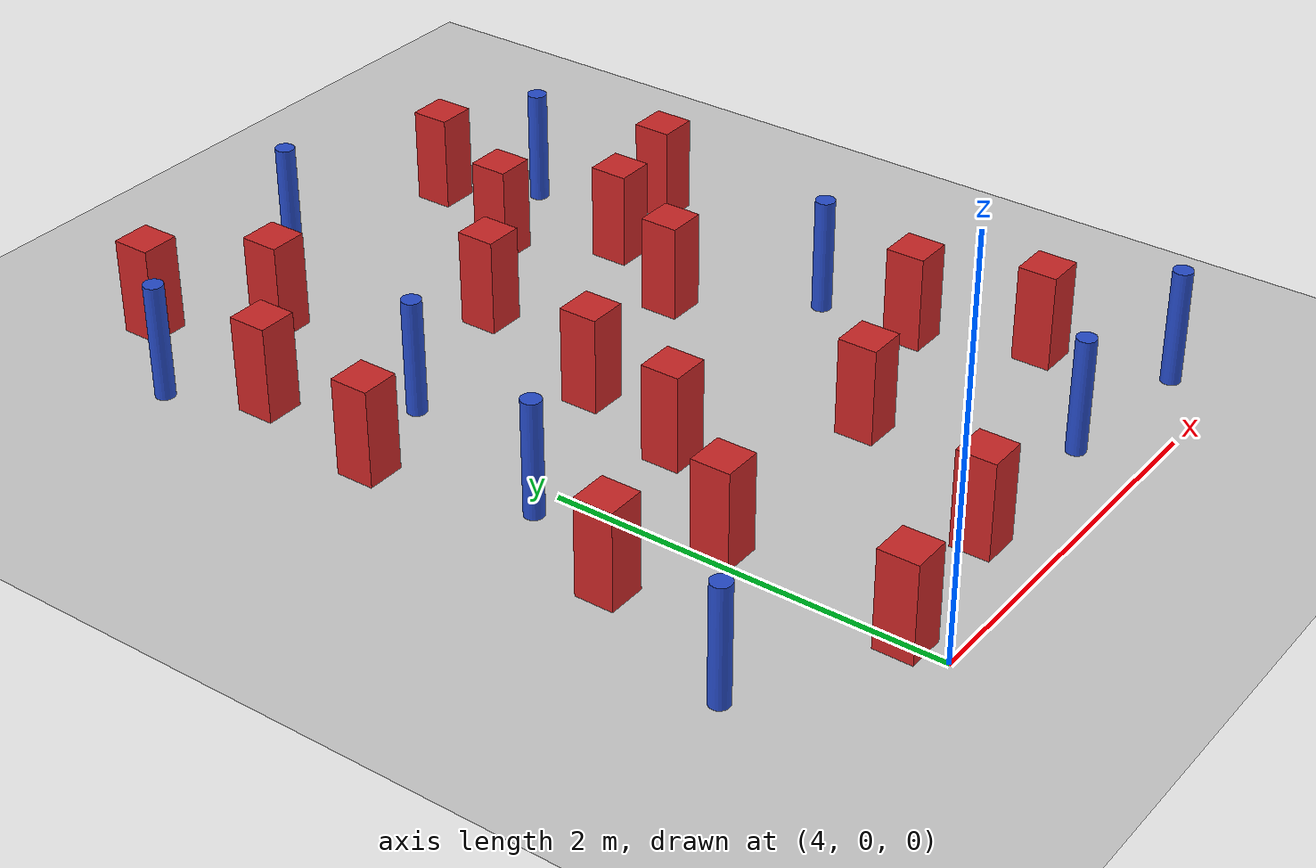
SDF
<sdf version="1.6">
 <world name="default">
  <model name="ground_plane">
   <static>1</static>
   <link name="link">
    <collision name="collision">
     <geometry><plane><normal>0 0 1</normal><size>100 100</size></plane></geometry>
     <surface><friction><ode><mu>100</mu><mu2>50</mu2></ode></friction></surface>
    </collision>
    <visual name="visual">
     <cast_shadows>0</cast_shadows>
     <geometry><plane><normal>0 0 1</normal><size>100 100</size></plane></geometry>
     <material>
      <ambient>1.0 1.0 1.0 1.0</ambient>
      <diffuse>0.8 0.8 0.8 1.0</diffuse>
      <specular>0.01 0.01 0.01 1.000000</specular>
     </material>
    </visual>
   </link>
  </model>
  <model name="square_post_obstacle31">
   <static>true</static>
   <pose>6.0948693656 1.46134708452 8.22691968438e-08 7.2212513382e-06 -7.54495500217e-07 2.29674213826e-05</pose>
   <link name="link">
    <pose>0 0 0.25 0 -0 0</pose>
    <inertial>
     <mass>100</mass>
     <inertia>
      <ixx>0.166667</ixx>
      <ixy>0</ixy>
      <ixz>0</ixz>
      <iyy>0.166667</iyy>
      <iyz>0</iyz>
      <izz>0.166667</izz>
     </inertia>
    </inertial>
    <collision name="collision"><geometry><box><size>.2 .2 .5</size></box></geometry></collision>
    <visual name="visual">
     <geometry><box><size>.2 .2 .5</size></box></geometry>
     <material>
      <script><name>Gazebo/Red</name><uri>file://media/materials/scripts/gazebo.material</uri></script>
     </material>
    </visual>
   </link>
  </model>
  <model name="square_post_obstacle33">
   <static>true</static>
   <pose>4.80002112037 0.321490979364 8.22691968438e-08 7.2212513382e-06 -7.54495500217e-07 2.29674213826e-05</pose>
   <link name="link">
    <pose>0 0 0.25 0 -0 0</pose>
    <inertial>
     <mass>100</mass>
     <inertia>
      <ixx>0.166667</ixx>
      <ixy>0</ixy>
      <ixz>0</ixz>
      <iyy>0.166667</iyy>
      <iyz>0</iyz>
      <izz>0.166667</izz>
     </inertia>
    </inertial>
    <collision name="collision"><geometry><box><size>.2 .2 .5</size></box></geometry></collision>
    <visual name="visual">
     <geometry><box><size>.2 .2 .5</size></box></geometry>
     <material>
      <script><name>Gazebo/Red</name><uri>file://media/materials/scripts/gazebo.material</uri></script>
     </material>
    </visual>
   </link>
  </model>
  <model name="pole_obstacle60">
   <static>true</static>
   <pose>4.94756713771 4.46294073131 2.88873142074e-08 -9.90536690842e-09 4.60219948965e-07 -1.20965994976e-07</pose>
   <link name="link">
    <pose>0 0 0.3 0 -0 0</pose>
    <inertial>
     <mass>1</mass>
     <inertia><ixx>0.145833</ixx><ixy>0</ixy><ixz>0</ixz><iyy>0.145833</iyy><iyz>0</iyz><izz>0.125</izz></inertia>
    </inertial>
    <collision name="collision">
     <geometry><cylinder><radius>0.05</radius><length>.6</length></cylinder></geometry>
    </collision>
    <visual name="visual">
     <geometry><cylinder><radius>0.05</radius><length>.6</length></cylinder></geometry>
     <material>
      <script><name>Gazebo/Blue</name><uri>file://media/materials/scripts/gazebo.material</uri></script>
     </material>
    </visual>
   </link>
  </model>
  <model name="square_post_obstacle64">
   <static>true</static>
   <pose>5.61569513435 3.62039335274 8.22691968438e-08 7.2212513382e-06 -7.54495500217e-07 2.29674213826e-05</pose>
   <link name="link">
    <pose>0 0 0.25 0 -0 0</pose>
    <inertial>
     <mass>100</mass>
     <inertia>
      <ixx>0.166667</ixx>
      <ixy>0</ixy>
      <ixz>0</ixz>
      <iyy>0.166667</iyy>
      <iyz>0</iyz>
      <izz>0.166667</izz>
     </inertia>
    </inertial>
    <collision name="collision"><geometry><box><size>.2 .2 .5</size></box></geometry></collision>
    <visual name="visual">
     <geometry><box><size>.2 .2 .5</size></box></geometry>
     <material>
      <script><name>Gazebo/Red</name><uri>file://media/materials/scripts/gazebo.material</uri></script>
     </material>
    </visual>
   </link>
  </model>
  <model name="square_post_obstacle70">
   <static>true</static>
   <pose>5.65078048055 2.58453810681 8.22691968438e-08 7.2212513382e-06 -7.54495500217e-07 2.29674213826e-05</pose>
   <link name="link">
    <pose>0 0 0.25 0 -0 0</pose>
    <inertial>
     <mass>100</mass>
     <inertia>
      <ixx>0.166667</ixx>
      <ixy>0</ixy>
      <ixz>0</ixz>
      <iyy>0.166667</iyy>
      <iyz>0</iyz>
      <izz>0.166667</izz>
     </inertia>
    </inertial>
    <collision name="collision"><geometry><box><size>.2 .2 .5</size></box></geometry></collision>
    <visual name="visual">
     <geometry><box><size>.2 .2 .5</size></box></geometry>
     <material>
      <script><name>Gazebo/Red</name><uri>file://media/materials/scripts/gazebo.material</uri></script>
     </material>
    </visual>
   </link>
  </model>
  <model name="square_post_obstacle71">
   <static>true</static>
   <pose>4.56409459324 1.78852129041 8.22691968438e-08 7.2212513382e-06 -7.54495500217e-07 2.29674213826e-05</pose>
   <link name="link">
    <pose>0 0 0.25 0 -0 0</pose>
    <inertial>
     <mass>100</mass>
     <inertia>
      <ixx>0.166667</ixx>
      <ixy>0</ixy>
      <ixz>0</ixz>
      <iyy>0.166667</iyy>
      <iyz>0</iyz>
      <izz>0.166667</izz>
     </inertia>
    </inertial>
    <collision name="collision"><geometry><box><size>.2 .2 .5</size></box></geometry></collision>
    <visual name="visual">
     <geometry><box><size>.2 .2 .5</size></box></geometry>
     <material>
      <script><name>Gazebo/Red</name><uri>file://media/materials/scripts/gazebo.material</uri></script>
     </material>
    </visual>
   </link>
  </model>
  <model name="pole_obstacle71">
   <static>true</static>
   <pose>6.4777378661 0.260255952438 2.88873142074e-08 -9.90536689883e-09 4.60219948988e-07 -1.20965994961e-07</pose>
   <link name="link">
    <pose>0 0 0.3 0 -0 0</pose>
    <inertial>
     <mass>1</mass>
     <inertia><ixx>0.145833</ixx><ixy>0</ixy><ixz>0</ixz><iyy>0.145833</iyy><iyz>0</iyz><izz>0.125</izz></inertia>
    </inertial>
    <collision name="collision">
     <geometry><cylinder><radius>0.05</radius><length>.6</length></cylinder></geometry>
    </collision>
    <visual name="visual">
     <geometry><cylinder><radius>0.05</radius><length>.6</length></cylinder></geometry>
     <material>
      <script><name>Gazebo/Blue</name><uri>file://media/materials/scripts/gazebo.material</uri></script>
     </material>
    </visual>
   </link>
  </model>
  <model name="square_post_obstacle80">
   <static>true</static>
   <pose>4.08681037357 1.18147574948 8.22691968438e-08 7.2212513382e-06 -7.54495500217e-07 2.29674213826e-05</pose>
   <link name="link">
    <pose>0 0 0.25 0 -0 0</pose>
    <inertial>
     <mass>100</mass>
     <inertia>
      <ixx>0.166667</ixx>
      <ixy>0</ixy>
      <ixz>0</ixz>
      <iyy>0.166667</iyy>
      <iyz>0</iyz>
      <izz>0.166667</izz>
     </inertia>
    </inertial>
    <collision name="collision"><geometry><box><size>.2 .2 .5</size></box></geometry></collision>
    <visual name="visual">
     <geometry><box><size>.2 .2 .5</size></box></geometry>
     <material>
      <script><name>Gazebo/Red</name><uri>file://media/materials/scripts/gazebo.material</uri></script>
     </material>
    </visual>
   </link>
  </model>
  <model name="square_post_obstacle81">
   <static>true</static>
   <pose>3.67015366936 2.81922112893 8.22691968438e-08 7.2212513382e-06 -7.54495500217e-07 2.29674213826e-05</pose>
   <link name="link">
    <pose>0 0 0.25 0 -0 0</pose>
    <inertial>
     <mass>100</mass>
     <inertia>
      <ixx>0.166667</ixx>
      <ixy>0</ixy>
      <ixz>0</ixz>
      <iyy>0.166667</iyy>
      <iyz>0</iyz>
      <izz>0.166667</izz>
     </inertia>
    </inertial>
    <collision name="collision"><geometry><box><size>.2 .2 .5</size></box></geometry></collision>
    <visual name="visual">
     <geometry><box><size>.2 .2 .5</size></box></geometry>
     <material>
      <script><name>Gazebo/Red</name><uri>file://media/materials/scripts/gazebo.material</uri></script>
     </material>
    </visual>
   </link>
  </model>
  <model name="pole_obstacle89">
   <static>true</static>
   <pose>3.83901957101 2.01076483617 2.88873142074e-08 -9.90536689662e-09 4.60219948993e-07 -1.20965994957e-07</pose>
   <link name="link">
    <pose>0 0 0.3 0 -0 0</pose>
    <inertial>
     <mass>1</mass>
     <inertia><ixx>0.145833</ixx><ixy>0</ixy><ixz>0</ixz><iyy>0.145833</iyy><iyz>0</iyz><izz>0.125</izz></inertia>
    </inertial>
    <collision name="collision">
     <geometry><cylinder><radius>0.05</radius><length>.6</length></cylinder></geometry>
    </collision>
    <visual name="visual">
     <geometry><cylinder><radius>0.05</radius><length>.6</length></cylinder></geometry>
     <material>
      <script><name>Gazebo/Blue</name><uri>file://media/materials/scripts/gazebo.material</uri></script>
     </material>
    </visual>
   </link>
  </model>
  <model name="pole_obstacle93">
   <static>true</static>
   <pose>4.17531212841 2.96968888223 2.88873142074e-08 -9.90536690245e-09 4.6021994898e-07 -1.20965994966e-07</pose>
   <link name="link">
    <pose>0 0 0.3 0 -0 0</pose>
    <inertial>
     <mass>1</mass>
     <inertia><ixx>0.145833</ixx><ixy>0</ixy><ixz>0</ixz><iyy>0.145833</iyy><iyz>0</iyz><izz>0.125</izz></inertia>
    </inertial>
    <collision name="collision">
     <geometry><cylinder><radius>0.05</radius><length>.6</length></cylinder></geometry>
    </collision>
    <visual name="visual">
     <geometry><cylinder><radius>0.05</radius><length>.6</length></cylinder></geometry>
     <material>
      <script><name>Gazebo/Blue</name><uri>file://media/materials/scripts/gazebo.material</uri></script>
     </material>
    </visual>
   </link>
  </model>
  <model name="square_post_obstacle84">
   <static>true</static>
   <pose>4.37230281539 4.01572510302 8.22691968438e-08 7.22125133819e-06 -7.54495500217e-07 2.29674213826e-05</pose>
   <link name="link">
    <pose>0 0 0.25 0 -0 0</pose>
    <inertial>
     <mass>100</mass>
     <inertia>
      <ixx>0.166667</ixx>
      <ixy>0</ixy>
      <ixz>0</ixz>
      <iyy>0.166667</iyy>
      <iyz>0</iyz>
      <izz>0.166667</izz>
     </inertia>
    </inertial>
    <collision name="collision"><geometry><box><size>.2 .2 .5</size></box></geometry></collision>
    <visual name="visual">
     <geometry><box><size>.2 .2 .5</size></box></geometry>
     <material>
      <script><name>Gazebo/Red</name><uri>file://media/materials/scripts/gazebo.material</uri></script>
     </material>
    </visual>
   </link>
  </model>
  <model name="square_post_obstacle90">
   <static>true</static>
   <pose>4.00096132078 0.212900404265 8.22691968438e-08 7.2212513382e-06 -7.54495500217e-07 2.29674213826e-05</pose>
   <link name="link">
    <pose>0 0 0.25 0 -0 0</pose>
    <inertial>
     <mass>100</mass>
     <inertia>
      <ixx>0.166667</ixx>
      <ixy>0</ixy>
      <ixz>0</ixz>
      <iyy>0.166667</iyy>
      <iyz>0</iyz>
      <izz>0.166667</izz>
     </inertia>
    </inertial>
    <collision name="collision"><geometry><box><size>.2 .2 .5</size></box></geometry></collision>
    <visual name="visual">
     <geometry><box><size>.2 .2 .5</size></box></geometry>
     <material>
      <script><name>Gazebo/Red</name><uri>file://media/materials/scripts/gazebo.material</uri></script>
     </material>
    </visual>
   </link>
  </model>
  <model name="pole_obstacle103">
   <static>true</static>
   <pose>6.17644602194 3.82168749053 2.88873142074e-08 -9.90536690245e-09 4.6021994898e-07 -1.20965994966e-07</pose>
   <link name="link">
    <pose>0 0 0.3 0 -0 0</pose>
    <inertial>
     <mass>1</mass>
     <inertia><ixx>0.145833</ixx><ixy>0</ixy><ixz>0</ixz><iyy>0.145833</iyy><iyz>0</iyz><izz>0.125</izz></inertia>
    </inertial>
    <collision name="collision">
     <geometry><cylinder><radius>0.05</radius><length>.6</length></cylinder></geometry>
    </collision>
    <visual name="visual">
     <geometry><cylinder><radius>0.05</radius><length>.6</length></cylinder></geometry>
     <material>
      <script><name>Gazebo/Blue</name><uri>file://media/materials/scripts/gazebo.material</uri></script>
     </material>
    </visual>
   </link>
  </model>
  <model name="pole_obstacle114">
   <static>true</static>
   <pose>5.6821173335 0.335346684699 2.88873142074e-08 -9.90536689981e-09 4.60219948986e-07 -1.20965994962e-07</pose>
   <link name="link">
    <pose>0 0 0.3 0 -0 0</pose>
    <inertial>
     <mass>1</mass>
     <inertia><ixx>0.145833</ixx><ixy>0</ixy><ixz>0</ixz><iyy>0.145833</iyy><iyz>0</iyz><izz>0.125</izz></inertia>
    </inertial>
    <collision name="collision">
     <geometry><cylinder><radius>0.05</radius><length>.6</length></cylinder></geometry>
    </collision>
    <visual name="visual">
     <geometry><cylinder><radius>0.05</radius><length>.6</length></cylinder></geometry>
     <material>
      <script><name>Gazebo/Blue</name><uri>file://media/materials/scripts/gazebo.material</uri></script>
     </material>
    </visual>
   </link>
  </model>
  <model name="square_post_obstacle111">
   <static>true</static>
   <pose>5.93407589627 3.10373790262 8.22691968438e-08 7.2212513382e-06 -7.54495500217e-07 2.29674213826e-05</pose>
   <link name="link">
    <pose>0 0 0.25 0 -0 0</pose>
    <inertial>
     <mass>100</mass>
     <inertia>
      <ixx>0.166667</ixx>
      <ixy>0</ixy>
      <ixz>0</ixz>
      <iyy>0.166667</iyy>
      <iyz>0</iyz>
      <izz>0.166667</izz>
     </inertia>
    </inertial>
    <collision name="collision"><geometry><box><size>.2 .2 .5</size></box></geometry></collision>
    <visual name="visual">
     <geometry><box><size>.2 .2 .5</size></box></geometry>
     <material>
      <script><name>Gazebo/Red</name><uri>file://media/materials/scripts/gazebo.material</uri></script>
     </material>
    </visual>
   </link>
  </model>
  <model name="square_post_obstacle112">
   <static>true</static>
   <pose>6.45338993447 3.21177440489 8.22691968438e-08 7.2212513382e-06 -7.54495500217e-07 2.29674213826e-05</pose>
   <link name="link">
    <pose>0 0 0.25 0 -0 0</pose>
    <inertial>
     <mass>100</mass>
     <inertia>
      <ixx>0.166667</ixx>
      <ixy>0</ixy>
      <ixz>0</ixz>
      <iyy>0.166667</iyy>
      <iyz>0</iyz>
      <izz>0.166667</izz>
     </inertia>
    </inertial>
    <collision name="collision"><geometry><box><size>.2 .2 .5</size></box></geometry></collision>
    <visual name="visual">
     <geometry><box><size>.2 .2 .5</size></box></geometry>
     <material>
      <script><name>Gazebo/Red</name><uri>file://media/materials/scripts/gazebo.material</uri></script>
     </material>
    </visual>
   </link>
  </model>
  <model name="pole_obstacle133">
   <static>true</static>
   <pose>6.07886590927 1.96816235913 2.88873142074e-08 -9.90536689273e-09 4.60219949003e-07 -1.20965994953e-07</pose>
   <link name="link">
    <pose>0 0 0.3 0 -0 0</pose>
    <inertial>
     <mass>1</mass>
     <inertia><ixx>0.145833</ixx><ixy>0</ixy><ixz>0</ixz><iyy>0.145833</iyy><iyz>0</iyz><izz>0.125</izz></inertia>
    </inertial>
    <collision name="collision">
     <geometry><cylinder><radius>0.05</radius><length>.6</length></cylinder></geometry>
    </collision>
    <visual name="visual">
     <geometry><cylinder><radius>0.05</radius><length>.6</length></cylinder></geometry>
     <material>
      <script><name>Gazebo/Blue</name><uri>file://media/materials/scripts/gazebo.material</uri></script>
     </material>
    </visual>
   </link>
  </model>
  <model name="square_post_obstacle119">
   <static>true</static>
   <pose>5.88640751658 4.23069218788 8.22691968438e-08 7.2212513382e-06 -7.54495500217e-07 2.29674213826e-05</pose>
   <link name="link">
    <pose>0 0 0.25 0 -0 0</pose>
    <inertial>
     <mass>100</mass>
     <inertia>
      <ixx>0.166667</ixx>
      <ixy>0</ixy>
      <ixz>0</ixz>
      <iyy>0.166667</iyy>
      <iyz>0</iyz>
      <izz>0.166667</izz>
     </inertia>
    </inertial>
    <collision name="collision"><geometry><box><size>.2 .2 .5</size></box></geometry></collision>
    <visual name="visual">
     <geometry><box><size>.2 .2 .5</size></box></geometry>
     <material>
      <script><name>Gazebo/Red</name><uri>file://media/materials/scripts/gazebo.material</uri></script>
     </material>
    </visual>
   </link>
  </model>
  <model name="square_post_obstacle120">
   <static>true</static>
   <pose>5.02037151944 3.21566163851 8.22691968438e-08 7.2212513382e-06 -7.54495500217e-07 2.29674213826e-05</pose>
   <link name="link">
    <pose>0 0 0.25 0 -0 0</pose>
    <inertial>
     <mass>100</mass>
     <inertia>
      <ixx>0.166667</ixx>
      <ixy>0</ixy>
      <ixz>0</ixz>
      <iyy>0.166667</iyy>
      <iyz>0</iyz>
      <izz>0.166667</izz>
     </inertia>
    </inertial>
    <collision name="collision"><geometry><box><size>.2 .2 .5</size></box></geometry></collision>
    <visual name="visual">
     <geometry><box><size>.2 .2 .5</size></box></geometry>
     <material>
      <script><name>Gazebo/Red</name><uri>file://media/materials/scripts/gazebo.material</uri></script>
     </material>
    </visual>
   </link>
  </model>
  <model name="square_post_obstacle135">
   <static>true</static>
   <pose>4.74016336449 2.38019699534 8.22691968438e-08 7.2212513382e-06 -7.54495500217e-07 2.29674213826e-05</pose>
   <link name="link">
    <pose>0 0 0.25 0 -0 0</pose>
    <inertial>
     <mass>100</mass>
     <inertia>
      <ixx>0.166667</ixx>
      <ixy>0</ixy>
      <ixz>0</ixz>
      <iyy>0.166667</iyy>
      <iyz>0</iyz>
      <izz>0.166667</izz>
     </inertia>
    </inertial>
    <collision name="collision"><geometry><box><size>.2 .2 .5</size></box></geometry></collision>
    <visual name="visual">
     <geometry><box><size>.2 .2 .5</size></box></geometry>
     <material>
      <script><name>Gazebo/Red</name><uri>file://media/materials/scripts/gazebo.material</uri></script>
     </material>
    </visual>
   </link>
  </model>
  <model name="pole_obstacle154">
   <static>true</static>
   <pose>3.24959343019 0.612277359932 2.88873142074e-08 -9.90536689285e-09 4.60219949002e-07 -1.20965994953e-07</pose>
   <link name="link">
    <pose>0 0 0.3 0 -0 0</pose>
    <inertial>
     <mass>1</mass>
     <inertia><ixx>0.145833</ixx><ixy>0</ixy><ixz>0</ixz><iyy>0.145833</iyy><iyz>0</iyz><izz>0.125</izz></inertia>
    </inertial>
    <collision name="collision">
     <geometry><cylinder><radius>0.05</radius><length>.6</length></cylinder></geometry>
    </collision>
    <visual name="visual">
     <geometry><cylinder><radius>0.05</radius><length>.6</length></cylinder></geometry>
     <material>
      <script><name>Gazebo/Blue</name><uri>file://media/materials/scripts/gazebo.material</uri></script>
     </material>
    </visual>
   </link>
  </model>
  <model name="pole_obstacle158">
   <static>true</static>
   <pose>3.5852293413 4.01375940114 2.88873142074e-08 -9.90536689848e-09 4.60219948989e-07 -1.20965994961e-07</pose>
   <link name="link">
    <pose>0 0 0.3 0 -0 0</pose>
    <inertial>
     <mass>1</mass>
     <inertia><ixx>0.145833</ixx><ixy>0</ixy><ixz>0</ixz><iyy>0.145833</iyy><iyz>0</iyz><izz>0.125</izz></inertia>
    </inertial>
    <collision name="collision">
     <geometry><cylinder><radius>0.05</radius><length>.6</length></cylinder></geometry>
    </collision>
    <visual name="visual">
     <geometry><cylinder><radius>0.05</radius><length>.6</length></cylinder></geometry>
     <material>
      <script><name>Gazebo/Blue</name><uri>file://media/materials/scripts/gazebo.material</uri></script>
     </material>
    </visual>
   </link>
  </model>
  <model name="square_post_obstacle152">
   <static>true</static>
   <pose>3.99046249471 4.4894553386 8.22691968438e-08 7.2212513382e-06 -7.54495500217e-07 2.29674213826e-05</pose>
   <link name="link">
    <pose>0 0 0.25 0 -0 0</pose>
    <inertial>
     <mass>100</mass>
     <inertia>
      <ixx>0.166667</ixx>
      <ixy>0</ixy>
      <ixz>0</ixz>
      <iyy>0.166667</iyy>
      <iyz>0</iyz>
      <izz>0.166667</izz>
     </inertia>
    </inertial>
    <collision name="collision"><geometry><box><size>.2 .2 .5</size></box></geometry></collision>
    <visual name="visual">
     <geometry><box><size>.2 .2 .5</size></box></geometry>
     <material>
      <script><name>Gazebo/Red</name><uri>file://media/materials/scripts/gazebo.material</uri></script>
     </material>
    </visual>
   </link>
  </model>
  <model name="square_post_obstacle153">
   <static>true</static>
   <pose>6.3107117351 0.869529029615 8.22691968438e-08 7.2212513382e-06 -7.54495500217e-07 2.29674213826e-05</pose>
   <link name="link">
    <pose>0 0 0.25 0 -0 0</pose>
    <inertial>
     <mass>100</mass>
     <inertia>
      <ixx>0.166667</ixx>
      <ixy>0</ixy>
      <ixz>0</ixz>
      <iyy>0.166667</iyy>
      <iyz>0</iyz>
      <izz>0.166667</izz>
     </inertia>
    </inertial>
    <collision name="collision"><geometry><box><size>.2 .2 .5</size></box></geometry></collision>
    <visual name="visual">
     <geometry><box><size>.2 .2 .5</size></box></geometry>
     <material>
      <script><name>Gazebo/Red</name><uri>file://media/materials/scripts/gazebo.material</uri></script>
     </material>
    </visual>
   </link>
  </model>
  <model name="square_post_obstacle157">
   <static>true</static>
   <pose>3.57201206341 1.40592727279 8.22691968438e-08 7.2212513382e-06 -7.54495500217e-07 2.29674213826e-05</pose>
   <link name="link">
    <pose>0 0 0.25 0 -0 0</pose>
    <inertial>
     <mass>100</mass>
     <inertia>
      <ixx>0.166667</ixx>
      <ixy>0</ixy>
      <ixz>0</ixz>
      <iyy>0.166667</iyy>
      <iyz>0</iyz>
      <izz>0.166667</izz>
     </inertia>
    </inertial>
    <collision name="collision"><geometry><box><size>.2 .2 .5</size></box></geometry></collision>
    <visual name="visual">
     <geometry><box><size>.2 .2 .5</size></box></geometry>
     <material>
      <script><name>Gazebo/Red</name><uri>file://media/materials/scripts/gazebo.material</uri></script>
     </material>
    </visual>
   </link>
  </model>
  <model name="square_post_obstacle172">
   <static>true</static>
   <pose>5.2642619745 1.20352729766 8.22691968438e-08 7.2212513382e-06 -7.54495500217e-07 2.29674213826e-05</pose>
   <link name="link">
    <pose>0 0 0.25 0 -0 0</pose>
    <inertial>
     <mass>100</mass>
     <inertia>
      <ixx>0.166667</ixx>
      <ixy>0</ixy>
      <ixz>0</ixz>
      <iyy>0.166667</iyy>
      <iyz>0</iyz>
      <izz>0.166667</izz>
     </inertia>
    </inertial>
    <collision name="collision"><geometry><box><size>.2 .2 .5</size></box></geometry></collision>
    <visual name="visual">
     <geometry><box><size>.2 .2 .5</size></box></geometry>
     <material>
      <script><name>Gazebo/Red</name><uri>file://media/materials/scripts/gazebo.material</uri></script>
     </material>
    </visual>
   </link>
  </model>
  <model name="square_post_obstacle186">
   <static>true</static>
   <pose>3.79382577239 3.5450307812 8.22691968438e-08 7.2212513382e-06 -7.54495500217e-07 2.29674213826e-05</pose>
   <link name="link">
    <pose>0 0 0.25 0 -0 0</pose>
    <inertial>
     <mass>100</mass>
     <inertia>
      <ixx>0.166667</ixx>
      <ixy>0</ixy>
      <ixz>0</ixz>
      <iyy>0.166667</iyy>
      <iyz>0</iyz>
      <izz>0.166667</izz>
     </inertia>
    </inertial>
    <collision name="collision"><geometry><box><size>.2 .2 .5</size></box></geometry></collision>
    <visual name="visual">
     <geometry><box><size>.2 .2 .5</size></box></geometry>
     <material>
      <script><name>Gazebo/Red</name><uri>file://media/materials/scripts/gazebo.material</uri></script>
     </material>
    </visual>
   </link>
  </model>
 </world>
</sdf>
